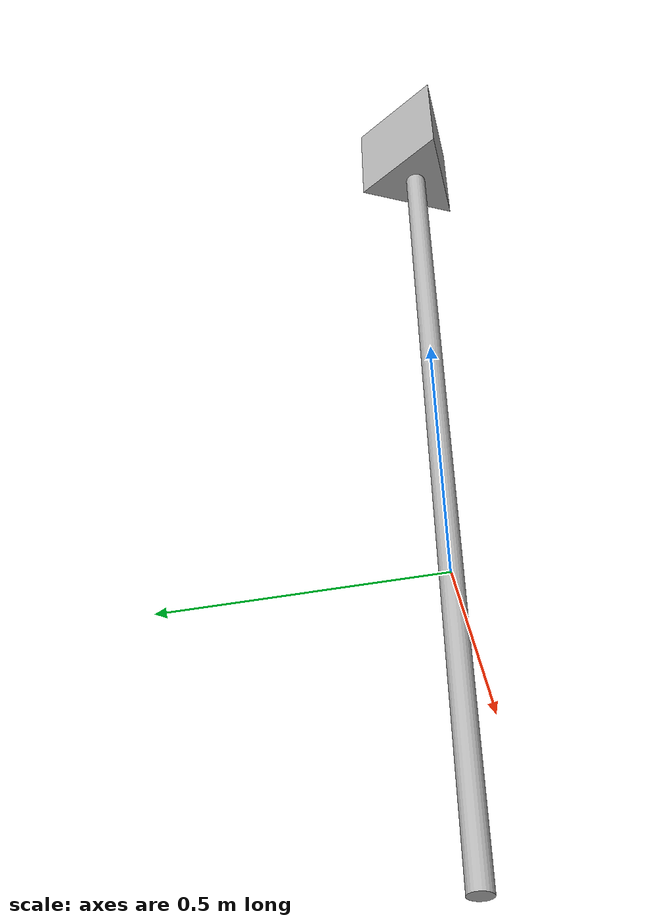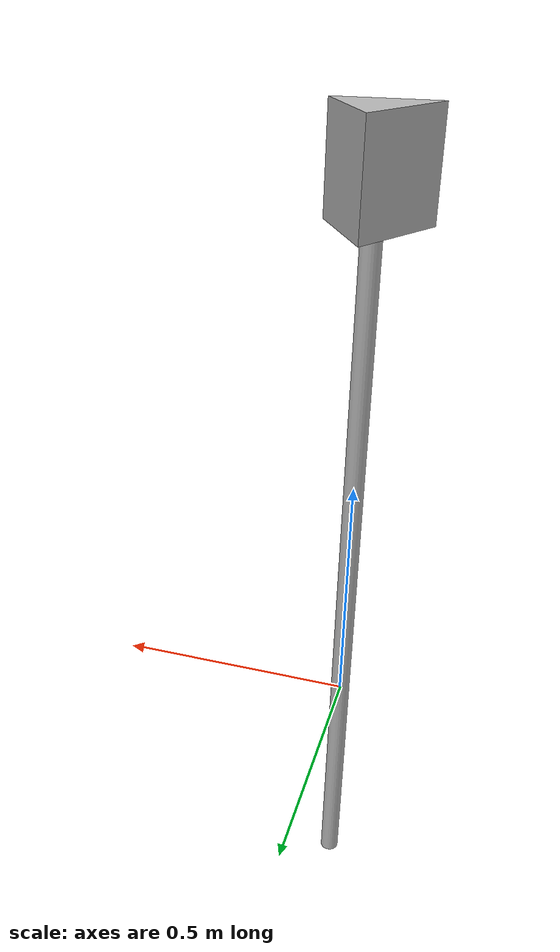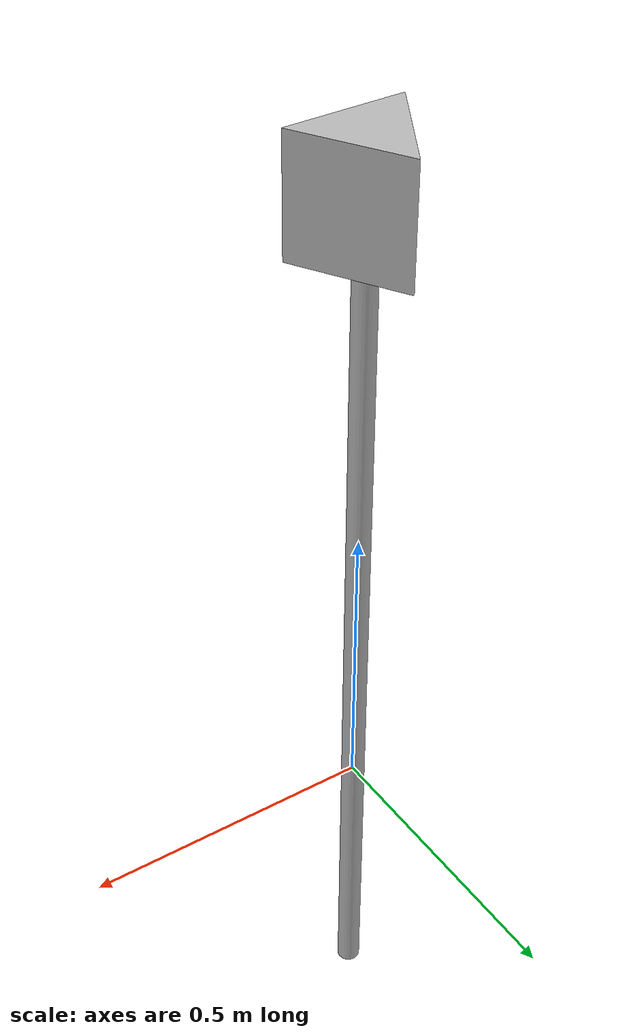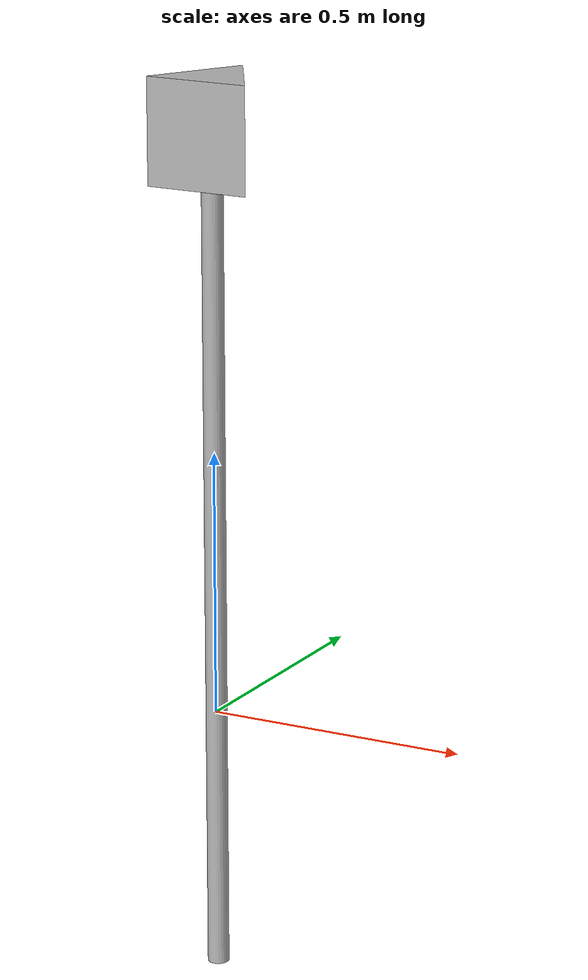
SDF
<?xml version="1.0"?>
<sdf version="1.9">
  <model name="urc_aruco_5_w_post">
    <static>true</static>
    <include>
      <uri>model://urc_aruco_5</uri>
      <pose>0 0 1.0 0 0 0</pose>
    </include>
    <link name="post">
      <visual name="visual">
        <pose>0 0 0.25 0 0 0</pose>
        <geometry>
          <cylinder>
            <radius>0.02</radius>
            <length>1.5</length>
          </cylinder>
        </geometry>
      </visual>
    </link>
  </model>
</sdf>

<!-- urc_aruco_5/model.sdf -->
<sdf version="1.9">
  <model name="urc_aruco_5">
    <static>true</static>
    <link name="link">
      <visual name="visual">
        <geometry>
          <mesh>
            <uri>model://urc_aruco_5/meshes/urc_aruco_5.dae</uri>
          </mesh>
        </geometry>
      </visual>
    </link>
  </model>
</sdf>
